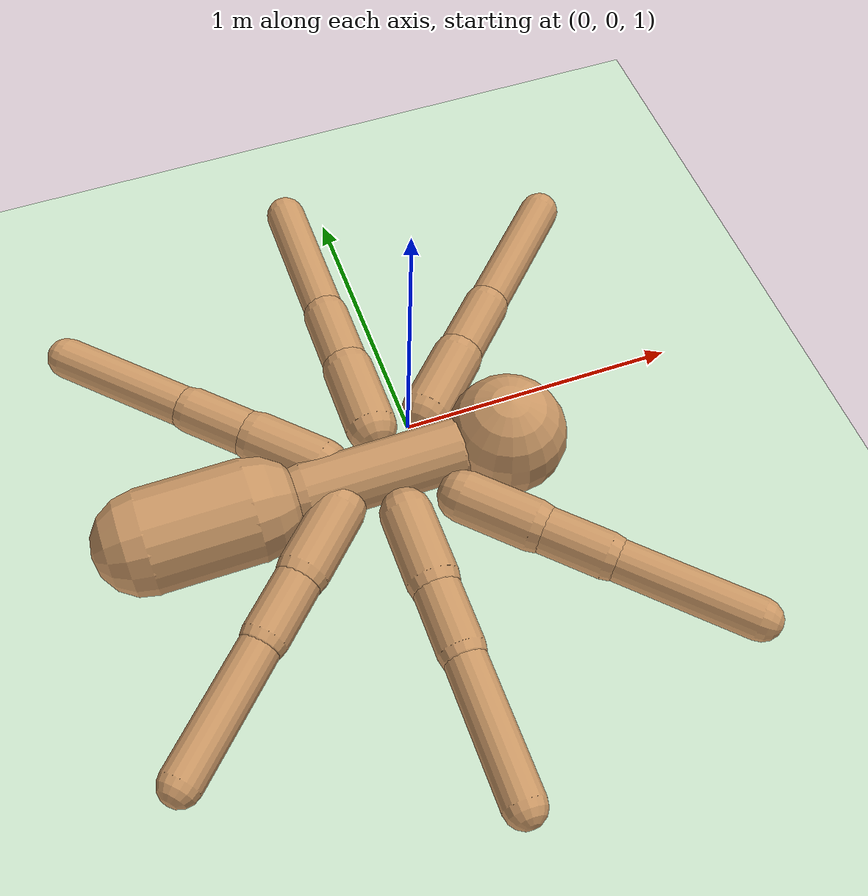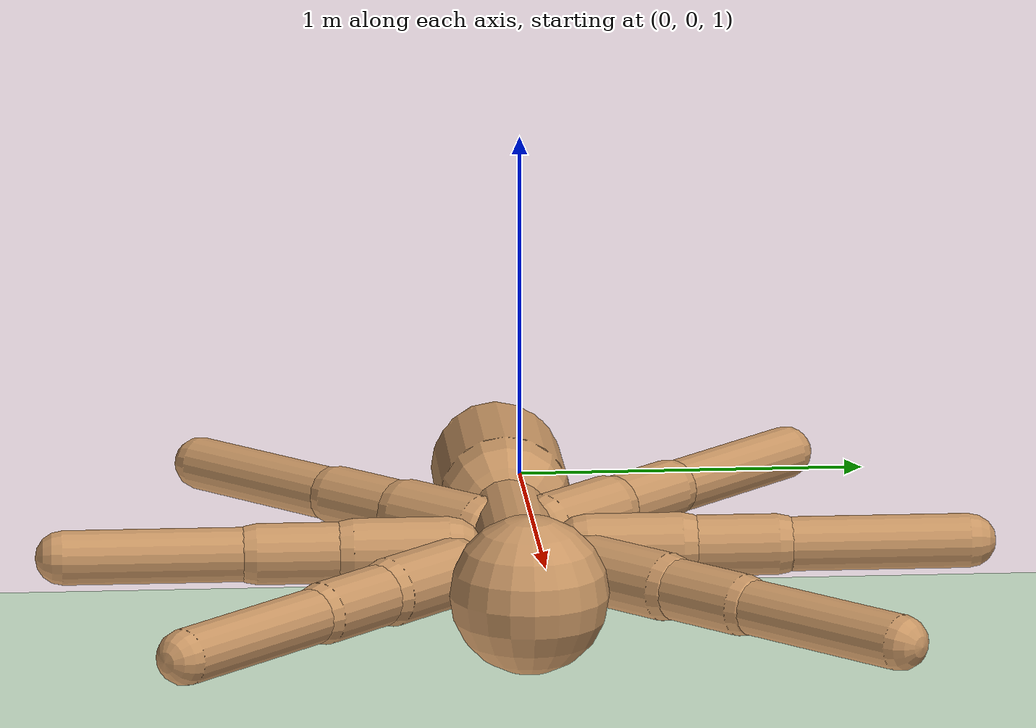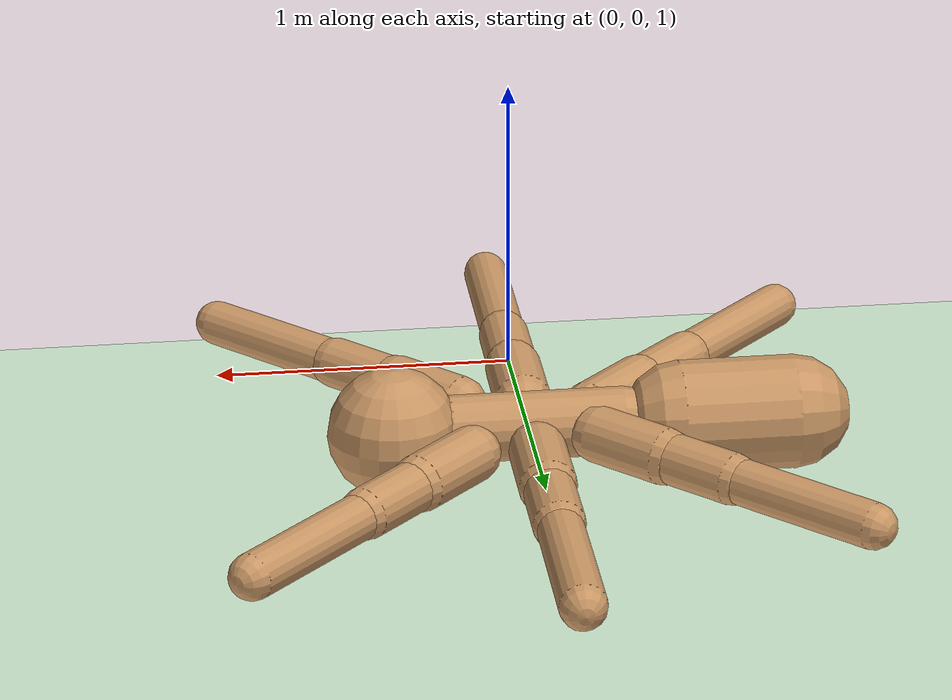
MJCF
<mujoco model="ant">
  <compiler angle="degree" coordinate="local" inertiafromgeom="true"/>
  <option integrator="RK4" timestep="0.002"/>
  <custom>
    <numeric data="0.0 0.0 0.55 1.0 0.0 0.0 0.0 0.0 1.0 0.0 -1.0 0.0 -1.0 0.0 1.0" name="init_qpos"/>
  </custom>
  <default>
    <joint armature="1" damping="1" limited="true"/>
    <geom conaffinity="0" condim="3" density="5.0" friction="1 0.5 0.5" margin="0.01" rgba="0.8 0.6 0.4 1"/>
  </default>
  <asset>
    <texture builtin="gradient" height="100" rgb1="1 1 1" rgb2="0 0 0" type="skybox" width="100"/>
    <texture builtin="flat" height="1278" mark="cross" markrgb="1 1 1" name="texgeom" random="0.01" rgb1="0.8 0.6 0.4" rgb2="0.8 0.6 0.4" type="cube" width="127"/>
    <texture builtin="checker" height="100" name="texplane" rgb1="0 0 0" rgb2="0.8 0.8 0.8" type="2d" width="100"/>
    <material name="MatPlane" reflectance="0.5" shininess="1" specular="1" texrepeat="60 60" texture="texplane"/>
    <material name="geom" texture="texgeom" texuniform="true"/>
  </asset>
  <worldbody>
    <light cutoff="100" diffuse="1 1 1" dir="-0 0 -1.3" directional="true" exponent="1" pos="0 0 1.3" specular=".1 .1 .1"/>
    <geom conaffinity="1" condim="6" material="MatPlane" name="floor" pos="0 0 0" rgba="0.8 0.9 0.8 1" size="40 40 40"  type="plane"/>
    <body pos="0 0 0.75">

      <!--몸통-->
      <geom name="torso" fromto ="-0.4 0.0 0.0 0.2 0.0 0.0" size="0.12" type="capsule"/>

      <!--머리-->
      <geom name="head" pos ="0.4 0 0" size="0.23" type="sphere"/>

      <geom name="tail" fromto ="-1.0 0 0 -0.6 0 0.0" size="0.2" type="capsule"/>

      <joint armature="0" damping="0" limited="false" margin="0.01" name="root" pos="0 0 0" type="free"/>

      <!--다리1-->
      <body pos="0.15 0.2 0">
        <geom fromto="0.0 0.0 0.0 0.2 0.2 0.0" name="aux_left_forward" size="0.1" type="capsule"/>
        <body pos="0.2 0.2 0">
          <joint axis="0 0 1" name="joint_leg_left_forward" pos="0.0 0.0 0.0" range="-30 30" type="hinge"/>
          <geom fromto="0.0 0.0 0.0 0.2 0.2 0.0" name="leg_left_forward" size="0.09" type="capsule"/>
          <body pos="0.2 0.2 0">
            <joint axis="-1 1 0" name="joint_ankle_left_forward" pos="0.0 0.0 0.0" range="30 70" type="hinge"/>
            <geom fromto="0.0 0.0 0.0 0.4 0.4 0.0" name="ankle_left_forward" size="0.08" type="capsule"/>
          </body>
        </body>
      </body>

      <!--다리2-->
      <body pos="-0.075 0.2 0">
        <geom fromto="0.0 0.0 0.0 0.0 0.28284 0.0" name="aux_left_middle" size="0.1" type="capsule"/>
        <body pos="0.0 0.28284 0">
          <joint axis="0 0 1" name="joint_leg_left_middle" pos="0.0 0 0.0" range="-30 30" type="hinge"/>
          <geom fromto="0.0 0.0 0.0 0.0 0.28284 0.0" name="leg_left_middle" size="0.09" type="capsule"/>
          <body pos="0.0 0.28284 0">
            <joint axis="-1 0 0" name="joint_ankle_left_middle" pos="0.0 0 0.0" range="30 70" type="hinge"/>
            <geom fromto="0.0 0.56568 0.0 0 0 0.0" name="ankle_left_middle" size="0.08" type="capsule"/>
          </body>
        </body>
      </body>

      <!--다리3-->
      <body pos="-0.3 0.1 0">
        <geom fromto="0.0 0.0 0.0 -0.2 0.2 0.0" name="aux_left_backward" size="0.1" type="capsule"/>
        <body pos="-0.2 0.2 0">
          <joint axis="0 0 1" name="joint_leg_left_backward" pos="0.0 0.0 0.0" range="-30 30" type="hinge"/>
          <geom fromto="0.0 0.0 0.0 -0.2 0.2 0.0" name="leg_left_backward" size="0.09" type="capsule"/>
          <body pos="-0.2 0.2 0">
            <joint axis="-1 -1 0" name="joint_ankle_left_backward" pos="0.0 0.0 0.0" range="30 70" type="hinge"/>
            <geom fromto="0.0 0.0 0.0 -0.4 0.4 0.0" name="ankle_left_backward" size="0.08" type="capsule"/>
          </body>
        </body>
      </body>

      <!--다리 4-->
      <body pos="0.15 -0.2 0">
        <geom fromto="0.0 0.0 0.0 0.2 -0.2 0.0" name="aux_right_forward" size="0.1" type="capsule"/>
        <body pos="0.2 -0.2 0">
          <joint axis="0 0 -1" name="joint_leg_right_forward" pos="0.0 0.0 0.0" range="-30 30" type="hinge"/>
          <geom fromto="0.0 0.0 0.0 0.2 -0.2 0.0" name="leg_right_forward" size="0.09" type="capsule"/>
          <body pos="0.2 -0.2 0">
            <joint axis="1 1 0" name="joint_ankle_right_forward" pos="0.0 0.0 0.0" range="30 70" type="hinge"/>
            <geom fromto="0.0 0.0 0.0 0.4 -0.4 0.0" name="ankle_right_forward" size="0.08" type="capsule"/>
          </body>
        </body>
      </body>

      <!--다리 5-->
      <body pos="-0.075 -0.2 0">
        <geom fromto="0.0 0 0.0 0 -0.28284 0.0" name="aux_right_middle" size="0.1" type="capsule"/>
        <body pos="0 -0.28284 0">
          <joint axis="0 0 -1" name="joint_leg_right_middle" pos="0.0 0.0 0.0" range="-30 30" type="hinge"/>
          <geom fromto="0.0 0 0.0 0 -0.28284 0.0" name="leg_right_middle" size="0.09" type="capsule"/>
          <body pos="0 -0.28284 0">
            <joint axis="1 0 0" name="joint_ankle_right_middle" pos="0.0 0.0 0.0" range="30 70" type="hinge"/>
            <geom fromto="0.0 -0.56568 0.0 0 0 0.0" name="ankle_right_middle" size="0.08" type="capsule"/>
          </body>
        </body>
      </body>

      <!--다리6-->
      <body pos="-0.3 -0.1 0">
        <geom fromto="0.0 0.0 0.0 -0.2 -0.2 0.0" name="aux_right_backward" size="0.1" type="capsule"/>
        <body pos="-0.2 -0.2 0">
          <joint axis="0 0 -1" name="joint_leg_right_backward" pos="0.0 0.0 0.0" range="-30 30" type="hinge"/>
          <geom fromto="0.0 0.0 0.0 -0.2 -0.2 0.0" name="leg_right_backward" size="0.09" type="capsule"/>
          <body pos="-0.2 -0.2 0">
            <joint axis="1 -1 0" name="joint_ankle_right_backward" pos="0.0 0.0 0.0" range="30 70" type="hinge"/>
            <geom fromto="0.0 0.0 0.0 -0.4 -0.4 0.0" name="ankle_right_backward" size="0.08" type="capsule"/>
          </body>
        </body>
      </body>

    </body>
  </worldbody>

  <actuator>

    <motor ctrllimited="true" ctrlrange="-1.0 1.0" joint="joint_leg_left_forward" gear="301"/>
    <motor ctrllimited="true" ctrlrange="-1.00 1.00" joint="joint_ankle_left_forward" gear="100"/>

    <motor ctrllimited="true" ctrlrange="-1.0 1.0" joint="joint_leg_left_middle" gear="301"/>
    <motor ctrllimited="true" ctrlrange="-1.00 1.00" joint="joint_ankle_left_middle" gear="100"/>

    <motor ctrllimited="true" ctrlrange="-1.0 1.0" joint="joint_leg_left_backward" gear="301"/>
    <motor ctrllimited="true" ctrlrange="-1.00 1.00" joint="joint_ankle_left_forward" gear="100"/>

    <motor ctrllimited="true" ctrlrange="-1.0 1.0" joint="joint_leg_right_forward" gear="301"/>
    <motor ctrllimited="true" ctrlrange="-1.00 1.00" joint="joint_ankle_right_forward" gear="100"/>

    <motor ctrllimited="true" ctrlrange="-1.0 1.0" joint="joint_leg_right_middle" gear="301"/>
    <motor ctrllimited="true" ctrlrange="-1.00 1.00" joint="joint_ankle_right_middle" gear="100"/>

    <motor ctrllimited="true" ctrlrange="-1.0 1.0" joint="joint_leg_right_backward" gear="301"/>
    <motor ctrllimited="true" ctrlrange="-1.00 1.00" joint="joint_ankle_right_backward" gear="100"/>

  </actuator>

</mujoco>
